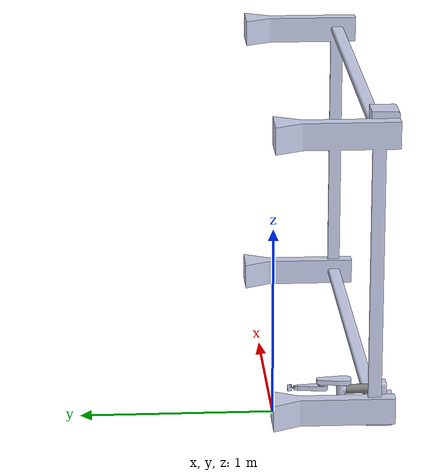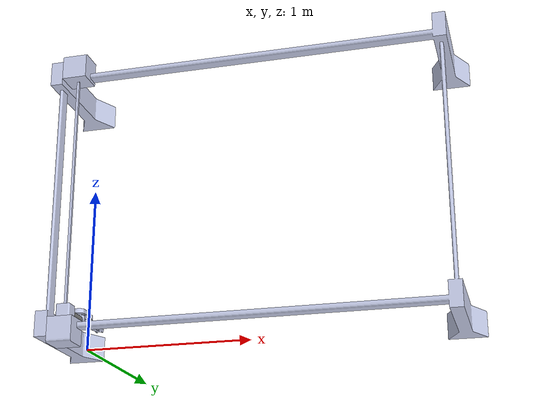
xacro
<?xml version="1.0"?>
<!-- Name your robot here -->
<robot name ="my_f_gantry_robot" xmlns:xacro="http://wiki.ros.org/xacro">

<!-- Include your urdf files here -->
	<!-- Include Robot's urdf filepath -->
	<xacro:include filename="$(find f_gantry_robot)/urdf/f_gantry_robot.urdf"/>

<!--  Gazebo plugin for control here is already added for you -->
	<gazebo>
		<plugin name="gazebo_ros_control" filename="libgazebo_ros_control.so">
			<robotNamespace>/f_gantry_robot</robotNamespace>
			<robotSimType>gazebo_ros_control/DefaultRobotHWSim</robotSimType>
			<legacyModeNS>true</legacyModeNS>
		</plugin>

	</gazebo>

</robot>

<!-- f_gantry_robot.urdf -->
<robot
  name="f_gantry_robot">

  <link name="dummy_link">
  </link>
  <joint name="dummy_joint" type="fixed">
  <parent link="dummy_link" />
  <child link="L0" />
  </joint>

  <link
    name="L0">
    <inertial>
      <origin
        xyz="1.10714285904415 0.749998569618219 0.350440549636899"
        rpy="0 0 0" />
      <mass
        value="45.7090884938413" />
      <inertia
        ixx="26.2933073109288"
        ixy="-1.22171726068075E-08"
        ixz="-9.64466009582674E-10"
        iyy="49.4179293885173"
        iyz="3.22610356515301E-09"
        izz="71.8303400673022" />
    </inertial>
    <visual>
      <origin
        xyz="0 0 0"
        rpy="0 0 0" />
      <geometry>
        <mesh
          filename="package://f_gantry_robot/meshes/L0.STL" />
      </geometry>
      <material
        name="">
        <color
          rgba="0.792156862745098 0.819607843137255 0.933333333333333 1" />
      </material>
    </visual>
    <collision>
      <origin
        xyz="0 0 0"
        rpy="0 0 0" />
      <geometry>
        <mesh
          filename="package://f_gantry_robot/meshes/L0.STL" />
      </geometry>
    </collision>
  </link>

  <link
    name="L1">
    <inertial>
      <origin
        xyz="-0.785714281544138 0.00464236562733333 -0.0714285714285771"
        rpy="0 0 0" />
      <mass
        value="5.40609923187187" />
      <inertia
        ixx="0.0172106463607029"
        ixy="-2.92290980463068E-12"
        ixz="4.31293956137086E-17"
        iyy="3.26278765690857"
        iyz="-3.6056677368165E-18"
        izz="3.26259194444328" />
    </inertial>
    <visual>
      <origin
        xyz="0 0 0"
        rpy="0 0 0" />
      <geometry>
        <mesh
          filename="package://f_gantry_robot/meshes/L1.STL" />
      </geometry>
      <material
        name="">
        <color
          rgba="0.792156862745098 0.819607843137255 0.933333333333333 1" />
      </material>
    </visual>
    <collision>
      <origin
        xyz="0 0 0"
        rpy="0 0 0" />
      <geometry>
        <mesh
          filename="package://f_gantry_robot/meshes/L1.STL" />
      </geometry>
    </collision>
  </link>

  <joint
    name="J1"
    type="prismatic">
    <origin
      xyz="0.035714 -0.57143 -0.035714"
      rpy="3.1416 1.5708 0" />
    <parent
      link="L0" />
    <child
      link="L1" />
    <axis
      xyz="0 0 1" />
    <limit
      lower="-2"
      upper="0"
      effort="90"
      velocity="0.1" />
  </joint>

  <transmission name="Joint_1">
    <type>transmission_interface/SimpleTransmission</type>
    <joint name="J1">
      <hardwareInterface>hardware_interface/PositionJointInterface</hardwareInterface>
    </joint>
    <actuator name="M1">
      <mechanicalReduction>1</mechanicalReduction>
    </actuator>
  </transmission>

  <link
    name="L2">
    <inertial>
      <origin
        xyz="-1.38777878078145E-16 -0.000295354865567976 -0.040001123995086"
        rpy="0 0 0" />
      <mass
        value="0.434899584888463" />
      <inertia
        ixx="0.000416959438846053"
        ixy="2.52017255905925E-19"
        ixz="-1.46824558728147E-20"
        iyy="0.000463089836628531"
        iyz="8.63983052819577E-20"
        izz="0.000425389259754008" />
    </inertial>
    <visual>
      <origin
        xyz="0 0 0"
        rpy="0 0 0" />
      <geometry>
        <mesh
          filename="package://f_gantry_robot/meshes/L2.STL" />
      </geometry>
      <material
        name="">
        <color
          rgba="0.792156862745098 0.819607843137255 0.933333333333333 1" />
      </material>
    </visual>
    <collision>
      <origin
        xyz="0 0 0"
        rpy="0 0 0" />
      <geometry>
        <mesh
          filename="package://f_gantry_robot/meshes/L2.STL" />
      </geometry>
    </collision>
  </link>
  <joint
    name="J2"
    type="prismatic">
    <origin
      xyz="-0.071427 0 -0.071429"
      rpy="0 1.5708 0" />
    <parent
      link="L1" />
    <child
      link="L2" />
    <axis
      xyz="0 2.6946E-05 -1" />
    <limit
      lower="0"
      upper="1.3486"
      effort="20"
      velocity="0.1" />
  </joint>

  <transmission name="Joint_2">
    <type>transmission_interface/SimpleTransmission</type>
    <joint name="J2">
      <hardwareInterface>hardware_interface/PositionJointInterface</hardwareInterface>
    </joint>
    <actuator name="M2">
      <mechanicalReduction>1</mechanicalReduction>
    </actuator>
  </transmission>

  <link
    name="L3">
    <inertial>
      <origin
        xyz="-8.79478468028549E-06 0.0736471747897318 -1.88876692064355E-14"
        rpy="0 0 0" />
      <mass
        value="0.325325262072372" />
      <inertia
        ixx="0.000779107599593089"
        ixy="-1.74981056722359E-07"
        ixz="3.71433853743346E-22"
        iyy="0.000117049903997481"
        iyz="3.37111552918147E-19"
        izz="0.00077918886554173" />
    </inertial>
    <visual>
      <origin
        xyz="0 0 0"
        rpy="0 0 0" />
      <geometry>
        <mesh
          filename="package://f_gantry_robot/meshes/L3.STL" />
      </geometry>
      <material
        name="">
        <color
          rgba="0.498039215686275 0.498039215686275 0.498039215686275 1" />
      </material>
    </visual>
    <collision>
      <origin
        xyz="0 0 0"
        rpy="0 0 0" />
      <geometry>
        <mesh
          filename="package://f_gantry_robot/meshes/L3.STL" />
      </geometry>
    </collision>
  </link>

  <joint
    name="J3"
    type="fixed">
    <origin
      xyz="0 -0.029712 -0.040001"
      rpy="-3.1416 0 0" />
    <parent
      link="L2" />
    <child
      link="L3" />
    <axis
      xyz="0 1 0" />
  </joint>
  <link
    name="L4">
    <inertial>
      <origin
        xyz="0.0149979767799962 0.0274694096422748 -2.10815332551961E-08"
        rpy="0 0 0" />
      <mass
        value="0.158592600561539" />
      <inertia
        ixx="5.21692004565407E-05"
        ixy="3.49364309120793E-06"
        ixz="8.2568799672585E-11"
        iyy="0.000114681862985054"
        iyz="-1.15832100350628E-10"
        izz="0.000109591783908965" />
    </inertial>
    <visual>
      <origin
        xyz="0 0 0"
        rpy="0 0 0" />
      <geometry>
        <mesh
          filename="package://f_gantry_robot/meshes/L4.STL" />
      </geometry>
      <material
        name="">
        <color
          rgba="0.792156862745098 0.819607843137255 0.933333333333333 1" />
      </material>
    </visual>
    <collision>
      <origin
        xyz="0 0 0"
        rpy="0 0 0" />
      <geometry>
        <mesh
          filename="package://f_gantry_robot/meshes/L4.STL" />
      </geometry>
    </collision>
  </link>

  <joint
    name="J4"
    type="revolute">
    <origin
      xyz="0 0.146 0"
      rpy="-3.1416 -1.5687 3.1416" />
    <parent
      link="L3" />
    <child
      link="L4" />
    <axis
      xyz="0 1 0" />
    <limit
      lower="-3.14"
      upper="3.14"
      effort="20"
      velocity="1" />
  </joint>

  <transmission name="Joint_4">
    <type>transmission_interface/SimpleTransmission</type>
    <joint name="J4">
      <hardwareInterface>hardware_interface/PositionJointInterface</hardwareInterface>
    </joint>
    <actuator name="M4">
      <mechanicalReduction>1</mechanicalReduction>
    </actuator>
  </transmission>

  <link
    name="L5">
    <inertial>
      <origin
        xyz="1.65548130759419E-13 -0.0178430116520465 -0.0330210650613293"
        rpy="0 0 0" />
      <mass
        value="0.229643508251062" />
      <inertia
        ixx="0.000589562582560473"
        ixy="-2.68345662518328E-20"
        ixz="5.17325372535564E-19"
        iyy="0.000667491249164921"
        iyz="2.76727992986223E-07"
        izz="0.00010488966479855" />
    </inertial>
    <visual>
      <origin
        xyz="0 0 0"
        rpy="0 0 0" />
      <geometry>
        <mesh
          filename="package://f_gantry_robot/meshes/L5.STL" />
      </geometry>
      <material
        name="">
        <color
          rgba="0.792156862745098 0.819607843137255 0.933333333333333 1" />
      </material>
    </visual>
    <collision>
      <origin
        xyz="0 0 0"
        rpy="0 0 0" />
      <geometry>
        <mesh
          filename="package://f_gantry_robot/meshes/L5.STL" />
      </geometry>
    </collision>
  </link>

  <joint
    name="J5"
    type="revolute">
    <origin
      xyz="0.029 0.026 0"
      rpy="0 -1.547 1.5708" />
    <parent
      link="L4" />
    <child
      link="L5" />
    <axis
      xyz="0 1 0" />
    <limit
      lower="-3.14"
      upper="3.14"
      effort="20"
      velocity="1" />
  </joint>

  <transmission name="Joint_5">
    <type>transmission_interface/SimpleTransmission</type>
    <joint name="J5">
      <hardwareInterface>hardware_interface/PositionJointInterface</hardwareInterface>
    </joint>
    <actuator name="M5">
      <mechanicalReduction>1</mechanicalReduction>
    </actuator>
  </transmission>

  <link
    name="L6">
    <inertial>
      <origin
        xyz="4.88498130835069E-15 -0.0146356446057586 -0.0353152453376644"
        rpy="0 0 0" />
      <mass
        value="0.165415455625704" />
      <inertia
        ixx="0.000320673122950523"
        ixy="3.09696421339854E-21"
        ixz="4.65868120989865E-20"
        iyy="0.000321812073133408"
        iyz="-1.67334478420098E-05"
        izz="3.84249953599312E-05" />
    </inertial>
    <visual>
      <origin
        xyz="0 0 0"
        rpy="0 0 0" />
      <geometry>
        <mesh
          filename="package://f_gantry_robot/meshes/L6.STL" />
      </geometry>
      <material
        name="">
        <color
          rgba="0.792156862745098 0.819607843137255 0.933333333333333 1" />
      </material>
    </visual>
    <collision>
      <origin
        xyz="0 0 0"
        rpy="0 0 0" />
      <geometry>
        <mesh
          filename="package://f_gantry_robot/meshes/L6.STL" />
      </geometry>
    </collision>
  </link>

  <joint
    name="J6"
    type="revolute">
    <origin
      xyz="0 0 -0.10255"
      rpy="0 0.01102 -3.1416" />
    <parent
      link="L5" />
    <child
      link="L6" />
    <axis
      xyz="0 1 0" />
    <limit
      lower="-3.14"
      upper="3.14"
      effort="20"
      velocity="1" />
  </joint>

  <transmission name="Joint_6">
    <type>transmission_interface/SimpleTransmission</type>
    <joint name="J6">
      <hardwareInterface>hardware_interface/PositionJointInterface</hardwareInterface>
    </joint>
    <actuator name="M6">
      <mechanicalReduction>1</mechanicalReduction>
    </actuator>
  </transmission>

  <link
    name="L7">
    <inertial>
      <origin
        xyz="-4.8017145815038E-15 -0.00844472740586596 -5.55111512312578E-17"
        rpy="0 0 0" />
      <mass
        value="0.00578055719994573" />
      <inertia
        ixx="3.70196834286497E-07"
        ixy="-9.55393607498747E-23"
        ixz="-9.23878193682978E-19"
        iyy="6.56573634085627E-07"
        iyz="1.11960188378759E-24"
        izz="6.09329174700272E-07" />
    </inertial>
    <visual>
      <origin
        xyz="0 0 0"
        rpy="0 0 0" />
      <geometry>
        <mesh
          filename="package://f_gantry_robot/meshes/L7.STL" />
      </geometry>
      <material
        name="">
        <color
          rgba="0.792156862745098 0.819607843137255 0.933333333333333 1" />
      </material>
    </visual>
    <collision>
      <origin
        xyz="0 0 0"
        rpy="0 0 0" />
      <geometry>
        <mesh
          filename="package://f_gantry_robot/meshes/L7.STL" />
      </geometry>
    </collision>
  </link>

  <joint
    name="J7"
    type="revolute">
    <origin
      xyz="0 -0.0175 -0.1275"
      rpy="1.5708 0 3.1399" />
    <parent
      link="L6" />
    <child
      link="L7" />
    <axis
      xyz="0 1 0" />
    <limit
      lower="-3.14"
      upper="3.14"
      effort="1"
      velocity="1" />
  </joint>

  <transmission name="Joint_7">
    <type>transmission_interface/SimpleTransmission</type>
    <joint name="J7">
      <hardwareInterface>hardware_interface/PositionJointInterface</hardwareInterface>
    </joint>
    <actuator name="M7">
      <mechanicalReduction>1</mechanicalReduction>
    </actuator>
  </transmission>

  <link
    name="L8">
    <inertial>
      <origin
        xyz="-2.08490431308217E-08 -0.000283519514683597 -6.36626912298155E-08"
        rpy="0 0 0" />
      <mass
        value="0.00113453443914184" />
      <inertia
        ixx="3.61708115632829E-08"
        ixy="2.16375662839659E-13"
        ixz="1.93788779678884E-13"
        iyy="3.70021700782141E-08"
        iyz="1.08352825470538E-13"
        izz="1.31028052716023E-08" />
    </inertial>
    <visual>
      <origin
        xyz="0 0 0"
        rpy="0 0 0" />
      <geometry>
        <mesh
          filename="package://f_gantry_robot/meshes/L8.STL" />
      </geometry>
      <material
        name="">
        <color
          rgba="0.792156862745098 0.819607843137255 0.933333333333333 1" />
      </material>
    </visual>
    <collision>
      <origin
        xyz="0 0 0"
        rpy="0 0 0" />
      <geometry>
        <mesh
          filename="package://f_gantry_robot/meshes/L8.STL" />
      </geometry>
    </collision>
  </link>

  <joint
    name="J8"
    type="revolute">
    <origin
      xyz="0 -0.014997 0"
      rpy="1.5708 1.5674 -1.5708" />
    <parent
      link="L7" />
    <child
      link="L8" />
    <axis
      xyz="0 0 1" />
    <limit
      lower="-3.14"
      upper="3.14"
      effort="1"
      velocity="1" />
  </joint>

  <link
    name="L9">
    <inertial>
      <origin
        xyz="4.41036096532343E-14 0.0221809868594412 -1.22957199977236E-14"
        rpy="0 0 0" />
      <mass
        value="0.00573826347435232" />
      <inertia
        ixx="6.15476978991467E-07"
        ixy="-2.21364285267153E-19"
        ixz="1.99856965724141E-20"
        iyy="1.55470966727402E-06"
        iyz="-9.96669920065143E-21"
        izz="1.77536322879452E-06" />
    </inertial>
    <visual>
      <origin
        xyz="0 0 0"
        rpy="0 0 0" />
      <geometry>
        <mesh
          filename="package://f_gantry_robot/meshes/L9.STL" />
      </geometry>
      <material
        name="">
        <color
          rgba="0.792156862745098 0.819607843137255 0.933333333333333 1" />
      </material>
    </visual>
    <collision>
      <origin
        xyz="0 0 0"
        rpy="0 0 0" />
      <geometry>
        <mesh
          filename="package://f_gantry_robot/meshes/L9.STL" />
      </geometry>
    </collision>
  </link>

  <transmission name="Joint_8">
    <type>transmission_interface/SimpleTransmission</type>
    <joint name="J8">
      <hardwareInterface>hardware_interface/PositionJointInterface</hardwareInterface>
    </joint>
    <actuator name="M8">
      <mechanicalReduction>1</mechanicalReduction>
    </actuator>
  </transmission>

  <joint
    name="J9"
    type="revolute">
    <origin
      xyz="0 0 0"
      rpy="0 -1.5705 0" />
    <parent
      link="L8" />
    <child
      link="L9" />
    <axis
      xyz="0 1 0" />
    <limit
      lower="-3.14"
      upper="3.14"
      effort="10"
      velocity="1" />
  </joint>

  <transmission name="Joint_9">
    <type>transmission_interface/SimpleTransmission</type>
    <joint name="J9">
      <hardwareInterface>hardware_interface/PositionJointInterface</hardwareInterface>
    </joint>
    <actuator name="M9">
      <mechanicalReduction>1</mechanicalReduction>
    </actuator>
  </transmission>

</robot>
